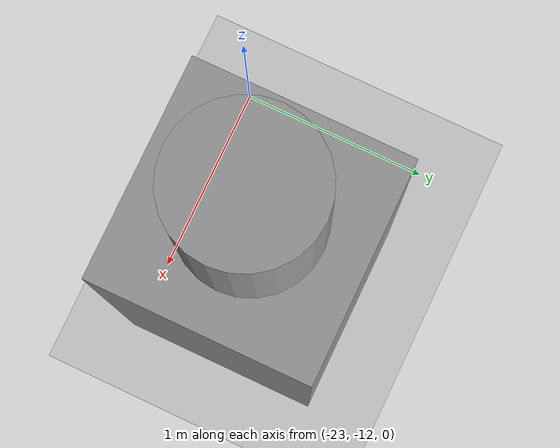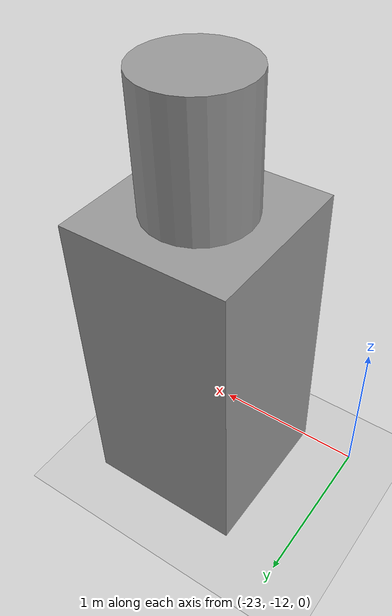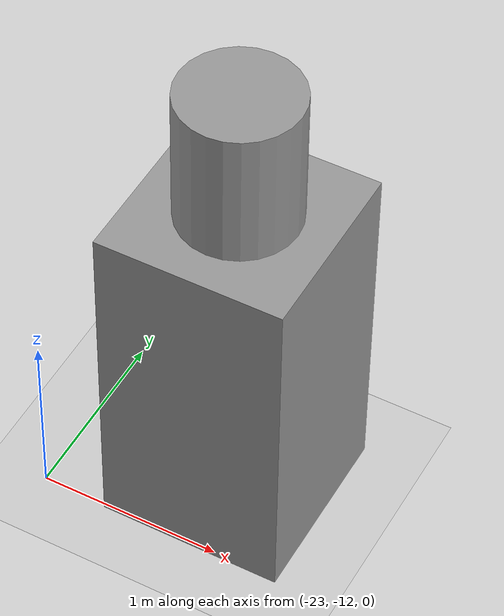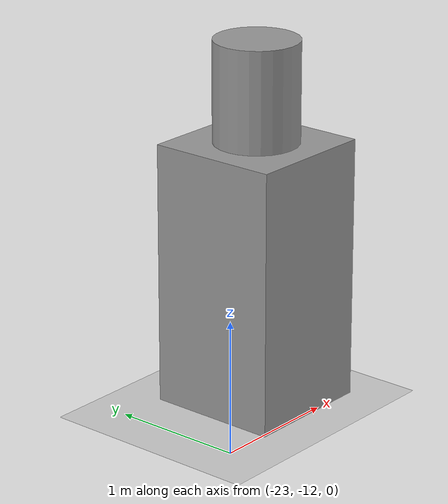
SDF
<sdf version="1.6">
 <world name="default">
  <model name="ground_plane">
   <static>1</static>
   <link name="link">
    <collision name="collision">
     <geometry><plane><normal>0 0 1</normal><size>100 100</size></plane></geometry>
     <surface><friction><ode><mu>100</mu><mu2>50</mu2></ode></friction></surface>
    </collision>
    <visual name="visual">
     <cast_shadows>0</cast_shadows>
     <geometry><plane><normal>0 0 1</normal><size>100 100</size></plane></geometry>
     <material>
      <script><uri>file://media/materials/scripts/gazebo.material</uri><name>Gazebo/Grey</name></script>
     </material>
    </visual>
   </link>
  </model>
  <model name="water_dispenser_0">
   <link name="link_5">
    <pose>-10.728 -6.39003 1.64708 0 -0 0</pose>
    <inertial>
     <mass>1.9827</mass>
     <inertia>
      <ixx>0.814745</ixx>
      <ixy>0</ixy>
      <ixz>0</ixz>
      <iyy>0.814745</iyy>
      <iyz>0</iyz>
      <izz>0.330451</izz>
     </inertia>
    </inertial>
    <visual name="visual">
     <geometry><box><size>1 1 1.9827</size></box></geometry>
     <material>
      <lighting>1</lighting>
      <script><uri>file://media/materials/scripts/gazebo.material</uri><name>Gazebo/Grey</name></script>
      <ambient>0.3 0.3 0.3 1</ambient>
      <diffuse>0.7 0.7 0.7 1</diffuse>
      <specular>0.01 0.01 0.01 1</specular>
      <emissive>0 0 0 1</emissive>
      <shader type="vertex"><normal_map>__default__</normal_map></shader>
     </material>
    </visual>
    <collision name="collision">
     <geometry><box><size>1 1 1.9827</size></box></geometry>
     <surface>
      <friction>
       <ode><mu>1</mu><mu2>1</mu2><fdir1>0 0 0</fdir1><slip1>0</slip1><slip2>0</slip2></ode>
       <torsional>
        <coefficient>1</coefficient>
        <patch_radius>0</patch_radius>
        <surface_radius>0</surface_radius>
        <use_patch_radius>1</use_patch_radius>
        <ode><slip>0</slip></ode>
       </torsional>
      </friction>
      <bounce><restitution_coefficient>0</restitution_coefficient><threshold>1e+06</threshold></bounce>
      <contact>
       <collide_without_contact>0</collide_without_contact>
       <collide_without_contact_bitmask>1</collide_without_contact_bitmask>
       <collide_bitmask>1</collide_bitmask>
       <ode>
        <soft_cfm>0</soft_cfm>
        <soft_erp>0.2</soft_erp>
        <kp>1e+13</kp>
        <kd>1</kd>
        <max_vel>0.01</max_vel>
        <min_depth>0</min_depth>
       </ode>
       <bullet>
        <split_impulse>1</split_impulse>
        <split_impulse_penetration_threshold>-0.01</split_impulse_penetration_threshold>
        <soft_cfm>0</soft_cfm>
        <soft_erp>0.2</soft_erp>
        <kp>1e+13</kp>
        <kd>1</kd>
       </bullet>
      </contact>
     </surface>
    </collision>
   </link>
   <link name="link_6">
    <pose>-10.728 -6.39003 3.01806 0 -0 0</pose>
    <inertial>
     <mass>0.305954</mass>
     <inertia>
      <ixx>0.0224036</ixx>
      <ixy>0</ixy>
      <ixz>0</ixz>
      <iyy>0.0224036</iyy>
      <iyz>0</iyz>
      <izz>0.015411</izz>
     </inertia>
    </inertial>
    <visual name="visual">
     <geometry><cylinder><radius>0.317396</radius><length>0.759266</length></cylinder></geometry>
     <material>
      <lighting>1</lighting>
      <script><uri>file://media/materials/scripts/gazebo.material</uri><name>Gazebo/Grey</name></script>
      <ambient>0.3 0.3 0.3 1</ambient>
      <diffuse>0.7 0.7 0.7 1</diffuse>
      <specular>0.01 0.01 0.01 1</specular>
      <emissive>0 0 0 1</emissive>
     </material>
    </visual>
    <collision name="collision">
     <geometry><cylinder><radius>0.317396</radius><length>0.759266</length></cylinder></geometry>
     <surface>
      <friction>
       <ode><mu>1</mu><mu2>1</mu2><fdir1>0 0 0</fdir1><slip1>0</slip1><slip2>0</slip2></ode>
       <torsional>
        <coefficient>1</coefficient>
        <patch_radius>0</patch_radius>
        <surface_radius>0</surface_radius>
        <use_patch_radius>1</use_patch_radius>
        <ode><slip>0</slip></ode>
       </torsional>
      </friction>
      <bounce><restitution_coefficient>0</restitution_coefficient><threshold>1e+06</threshold></bounce>
      <contact>
       <collide_without_contact>0</collide_without_contact>
       <collide_without_contact_bitmask>1</collide_without_contact_bitmask>
       <collide_bitmask>1</collide_bitmask>
       <ode>
        <soft_cfm>0</soft_cfm>
        <soft_erp>0.2</soft_erp>
        <kp>1e+13</kp>
        <kd>1</kd>
        <max_vel>0.01</max_vel>
        <min_depth>0</min_depth>
       </ode>
       <bullet>
        <split_impulse>1</split_impulse>
        <split_impulse_penetration_threshold>-0.01</split_impulse_penetration_threshold>
        <soft_cfm>0</soft_cfm>
        <soft_erp>0.2</soft_erp>
        <kp>1e+13</kp>
        <kd>1</kd>
       </bullet>
      </contact>
     </surface>
    </collision>
   </link>
   <joint name="link_5_JOINT_9" type="revolute">
    <parent>link_5</parent>
    <child>link_6</child>
    <axis>
     <xyz>1 0 0</xyz>
     <use_parent_model_frame>0</use_parent_model_frame>
     <limit>
      <lower>-1.79769e+308</lower>
      <upper>1.79769e+308</upper>
      <effort>-1</effort>
      <velocity>-1</velocity>
     </limit>
     <dynamics>
      <spring_reference>0</spring_reference>
      <spring_stiffness>0</spring_stiffness>
      <damping>0</damping>
     </dynamics>
    </axis>
    <physics>
     <ode><limit><cfm>0</cfm><erp>0.2</erp></limit><suspension><cfm>0</cfm><erp>0.2</erp></suspension></ode>
    </physics>
   </joint>
   <static>0</static>
   <pose>-11.4132 -5.12659 -0.655697 0 -3e-06 0.000234</pose>
  </model>
 </world>
</sdf>
